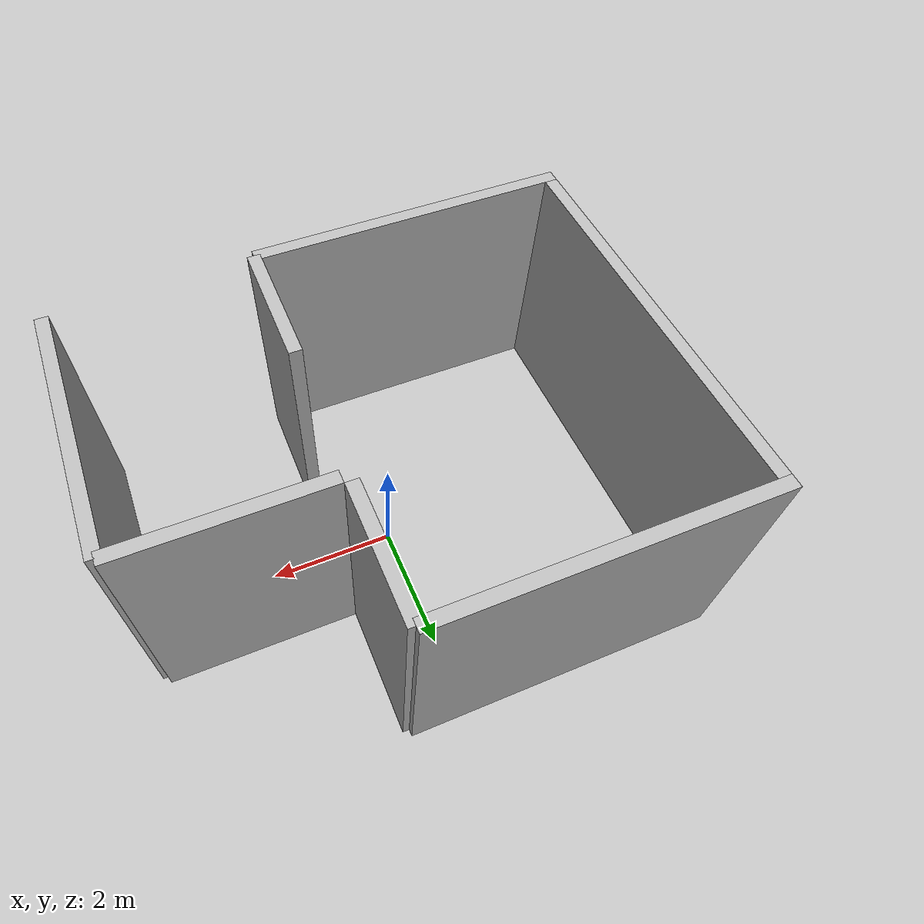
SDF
<?xml version="1.0"?>
<sdf version="1.3">
  <model name="starting_pen">
    <static>true</static>
    <pose>-2.0 0 2.0 0 0 0</pose>

    <link name="link">
      <collision name="back_collision">
        <pose>-2 0 0 0 0 0</pose>
        <geometry>
          <box>
            <size>0.2 6 4.0</size>
          </box>
        </geometry>
      </collision>
      <visual name="back_visual">
        <pose>-2 0 0 0 0 0</pose>
        <geometry>
          <box>
            <size>0.2 6 4.0</size>
          </box>
        </geometry>
        <material>
          <script>
            <uri>file://media/materials/scripts/drc_qual.material</uri>
            <name>DRCQual/WarningWall</name>
          </script>
        </material>
      </visual>

      <collision name="left_collision">
        <pose>0.4 -3.1 0 0 0 0</pose>
        <geometry>
          <box>
            <size>5 0.2 4.0</size>
          </box>
        </geometry>
      </collision>
      <visual name="left_visual_lower">
        <pose>0.4 -3.1 0.0 0 0 0</pose>
        <geometry>
          <box>
            <size>5 0.2 4.0</size>
          </box>
        </geometry>
        <material>
          <script>
            <uri>file://media/materials/scripts/drc_qual.material</uri>
            <name>DRCQual/WarningWall</name>
          </script>
        </material>
      </visual>

      <collision name="right_collision">
        <pose>0.4 3.1 0 0 0 0</pose>
        <geometry>
          <box>
            <size>5 0.2 4.0</size>
          </box>
        </geometry>
      </collision>
      <visual name="right_visual">
        <pose>0.4 3.1 0 0 0 0</pose>
        <geometry>
          <box>
            <size>5 0.2 4.0</size>
          </box>
        </geometry>
        <material>
          <script>
            <uri>file://media/materials/scripts/drc_qual.material</uri>
            <name>DRCQual/WarningWall</name>
          </script>
        </material>
      </visual>

      <collision name="front_right_collision">
        <pose>2.9 2.1 0 0 0 0</pose>
        <geometry>
          <box>
            <size>0.2 2.0 4.0</size>
          </box>
        </geometry>
      </collision>
      <visual name="front_right_visual">
        <pose>2.9 2.1 0 0 0 0</pose>
        <geometry>
          <box>
            <size>0.2 2.0 4.0</size>
          </box>
        </geometry>
        <material>
          <script>
            <uri>file://media/materials/scripts/drc_qual.material</uri>
            <name>DRCQual/WarningWall</name>
          </script>
        </material>
      </visual>

      <collision name="front_left_collision">
        <pose>2.9 -2.1 0 0 0 0</pose>
        <geometry>
          <box>
            <size>0.2 2.0 4.0</size>
          </box>
        </geometry>
      </collision>
      <visual name="front_left_visual">
        <pose>2.9 -2.1 0 0 0 0</pose>
        <geometry>
          <box>
            <size>0.2 2.0 4.0</size>
          </box>
        </geometry>
        <material>
          <script>
            <uri>file://media/materials/scripts/drc_qual.material</uri>
            <name>DRCQual/WarningWall</name>
          </script>
        </material>
      </visual>

      <collision name="front_collision">
        <pose>6.0 -1 0 0 0 0</pose>
        <geometry>
          <box>
            <size>0.2 4 4.0</size>
          </box>
        </geometry>
      </collision>
      <visual name="front_visual">
        <pose>6.0 -1 0 0 0 3.1415</pose>
        <geometry>
          <mesh>
            <uri>model://arrow_wall/meshes/arrow_wall.dae</uri>
          </mesh>
        </geometry>
      </visual>

      <collision name="entryway_collision">
        <pose>4.5 1.0 0 0 0 0</pose>
        <geometry>
          <box>
            <size>3.0 .2 4.0</size>
          </box>
        </geometry>
      </collision>
      <visual name="entryway_visual">
        <pose>4.5 1.0 0 0 0 0</pose>
        <geometry>
          <box>
            <size>3.0 .2 4.0</size>
          </box>
        </geometry>
        <material>
          <script>
            <uri>file://media/materials/scripts/drc_qual.material</uri>
            <name>DRCQual/WarningWall</name>
          </script>
        </material>
      </visual>

    </link>
  </model>
</sdf>
